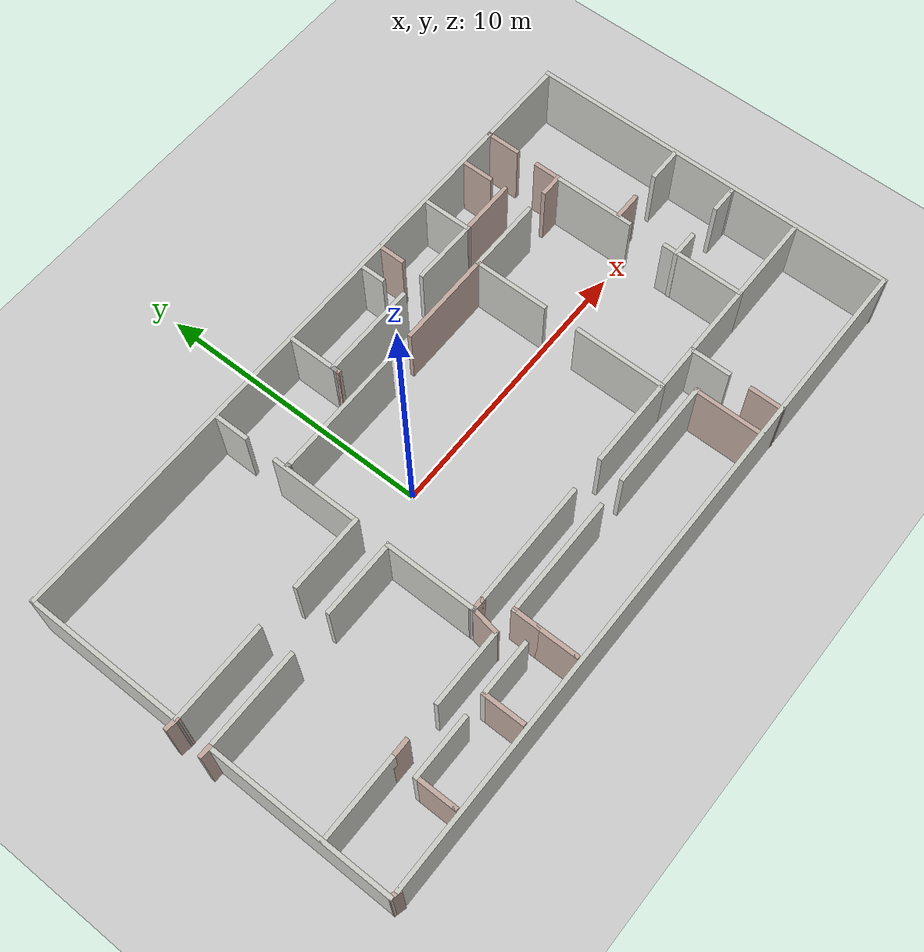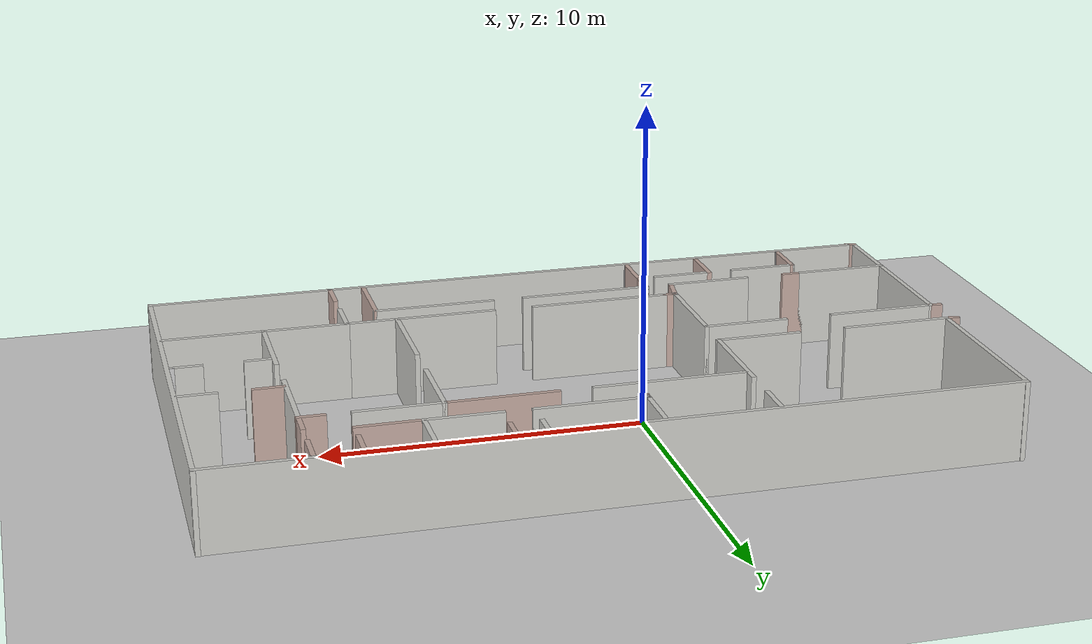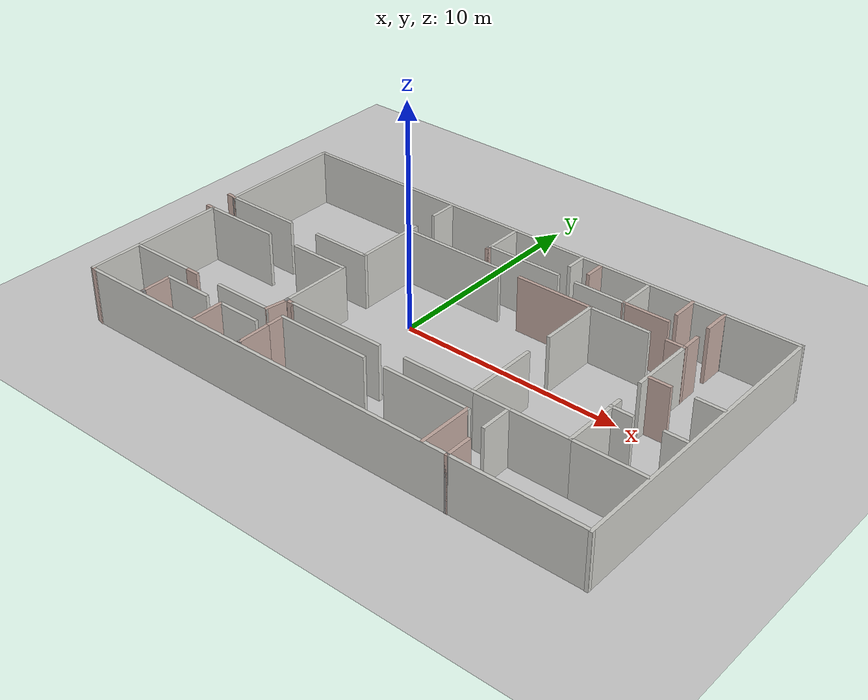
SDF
<sdf version="1.6">
 <world name="default">
  <model name="Untitled">
   <pose>1.90831 -1.04807 0 0 -0 0</pose>
   <link name="Wall_0">
    <collision name="Wall_0_Collision">
     <geometry><box><size>24 0.15 2.5</size></box></geometry>
     <pose>0 0 1.25 0 -0 0</pose>
    </collision>
    <visual name="Wall_0_Visual">
     <pose>0 0 1.25 0 -0 0</pose>
     <geometry><box><size>24 0.15 2.5</size></box></geometry>
     <material>
      <script><uri>file://media/materials/scripts/gazebo.material</uri><name>Gazebo/CeilingTiled</name></script>
      <ambient>0.760784 0.662745 0.627451 1</ambient>
     </material>
     <meta><layer>0</layer></meta>
    </visual>
    <pose>0.298836 -6.59916 0 0 -0 0</pose>
   </link>
   <link name="Wall_1">
    <collision name="Wall_1_Collision">
     <geometry><box><size>13.4119 0.15 2.5</size></box></geometry>
     <pose>0 0 1.25 0 -0 0</pose>
    </collision>
    <visual name="Wall_1_Visual">
     <pose>0 0 1.25 0 -0 0</pose>
     <geometry><box><size>13.4119 0.15 2.5</size></box></geometry>
     <material>
      <script><uri>file://media/materials/scripts/gazebo.material</uri><name>Gazebo/CeilingTiled</name></script>
      <ambient>0.760784 0.662745 0.627451 1</ambient>
     </material>
     <meta><layer>0</layer></meta>
    </visual>
    <pose>12.2238 0.008663 0 0 -0 1.5708</pose>
   </link>
   <link name="Wall_101">
    <collision name="Wall_101_Collision">
     <geometry><box><size>1 0.15 2.5</size></box></geometry>
     <pose>0 0 1.25 0 -0 0</pose>
    </collision>
    <visual name="Wall_101_Visual">
     <pose>0 0 1.25 0 -0 0</pose>
     <geometry><box><size>1 0.15 2.5</size></box></geometry>
     <material>
      <script><uri>file://media/materials/scripts/gazebo.material</uri><name>Gazebo/CeilingTiled</name></script>
      <ambient>0.760784 0.662745 0.627451 1</ambient>
     </material>
     <meta><layer>0</layer></meta>
    </visual>
    <pose>11.647 -0.916716 0 0 -0 0</pose>
   </link>
   <link name="Wall_102">
    <collision name="Wall_102_Collision">
     <geometry><box><size>0.15 0.15 2.5</size></box></geometry>
     <pose>0 0 1.25 0 -0 0</pose>
    </collision>
    <visual name="Wall_102_Visual">
     <pose>0 0 1.25 0 -0 0</pose>
     <geometry><box><size>0.15 0.15 2.5</size></box></geometry>
     <material>
      <script><uri>file://media/materials/scripts/gazebo.material</uri><name>Gazebo/LightGrey</name></script>
      <ambient>0.760784 0.662745 0.627451 1</ambient>
     </material>
     <meta><layer>0</layer></meta>
    </visual>
    <pose>12.072 -0.916716 0 0 -0 0</pose>
   </link>
   <link name="Wall_104">
    <collision name="Wall_104_Collision">
     <geometry><box><size>1 0.15 2.5</size></box></geometry>
     <pose>0 0 1.25 0 -0 0</pose>
    </collision>
    <visual name="Wall_104_Visual">
     <pose>0 0 1.25 0 -0 0</pose>
     <geometry><box><size>1 0.15 2.5</size></box></geometry>
     <material>
      <script><uri>file://media/materials/scripts/gazebo.material</uri><name>Gazebo/Grey</name></script>
      <ambient>0.760784 0.662745 0.627451 1</ambient>
     </material>
     <meta><layer>0</layer></meta>
    </visual>
    <pose>9.50731 1.37623 0 0 -0 0</pose>
   </link>
   <link name="Wall_106">
    <collision name="Wall_106_Collision">
     <geometry><box><size>1.25 0.15 2.5</size></box></geometry>
     <pose>0 0 1.25 0 -0 0</pose>
    </collision>
    <visual name="Wall_106_Visual">
     <pose>0 0 1.25 0 -0 0</pose>
     <geometry><box><size>1.25 0.15 2.5</size></box></geometry>
     <material>
      <script><uri>file://media/materials/scripts/gazebo.material</uri><name>Gazebo/CeilingTiled</name></script>
      <ambient>0.760784 0.662745 0.627451 1</ambient>
     </material>
     <meta><layer>0</layer></meta>
    </visual>
    <pose>11.5823 1.37623 0 0 -0 0</pose>
   </link>
   <link name="Wall_108">
    <collision name="Wall_108_Collision">
     <geometry><box><size>1 0.15 2.5</size></box></geometry>
     <pose>0 0 1.25 0 -0 0</pose>
    </collision>
    <visual name="Wall_108_Visual">
     <pose>0 0 1.25 0 -0 0</pose>
     <geometry><box><size>1 0.15 2.5</size></box></geometry>
     <material>
      <script><uri>file://media/materials/scripts/gazebo.material</uri><name>Gazebo/Grey</name></script>
      <ambient>0.760784 0.662745 0.627451 1</ambient>
     </material>
     <meta><layer>0</layer></meta>
    </visual>
    <pose>9.00455 4.21113 0 0 -0 1.5708</pose>
   </link>
   <link name="Wall_11">
    <collision name="Wall_11_Collision">
     <geometry><box><size>3.25 0.15 2.5</size></box></geometry>
     <pose>0 0 1.25 0 -0 0</pose>
    </collision>
    <visual name="Wall_11_Visual">
     <pose>0 0 1.25 0 -0 0</pose>
     <geometry><box><size>3.25 0.15 2.5</size></box></geometry>
     <material>
      <script><uri>file://media/materials/scripts/gazebo.material</uri><name>Gazebo/CeilingTiled</name></script>
      <ambient>0.760784 0.662745 0.627451 1</ambient>
     </material>
     <meta><layer>0</layer></meta>
    </visual>
    <pose>-4.31073 2.62935 0 0 -0 -1.5708</pose>
   </link>
   <link name="Wall_110">
    <collision name="Wall_110_Collision">
     <geometry><box><size>1.25 0.15 2.5</size></box></geometry>
     <pose>0 0 1.25 0 -0 0</pose>
    </collision>
    <visual name="Wall_110_Visual">
     <pose>0 0 1.25 0 -0 0</pose>
     <geometry><box><size>1.25 0.15 2.5</size></box></geometry>
     <material>
      <script><uri>file://media/materials/scripts/gazebo.material</uri><name>Gazebo/Grey</name></script>
      <ambient>0.760784 0.662745 0.627451 1</ambient>
     </material>
     <meta><layer>0</layer></meta>
    </visual>
    <pose>9.00455 6.03613 0 0 -0 1.5708</pose>
   </link>
   <link name="Wall_111">
    <collision name="Wall_111_Collision">
     <geometry><box><size>0.15 0.15 2.5</size></box></geometry>
     <pose>0 0 1.25 0 -0 0</pose>
    </collision>
    <visual name="Wall_111_Visual">
     <pose>0 0 1.25 0 -0 0</pose>
     <geometry><box><size>0.15 0.15 2.5</size></box></geometry>
     <material>
      <script><uri>file://media/materials/scripts/gazebo.material</uri><name>Gazebo/Grey</name></script>
      <ambient>1 1 1 1</ambient>
     </material>
     <meta><layer>0</layer></meta>
    </visual>
    <pose>9.00455 6.58613 0 0 -0 0</pose>
   </link>
   <link name="Wall_113">
    <collision name="Wall_113_Collision">
     <geometry><box><size>1 0.15 2.5</size></box></geometry>
     <pose>0 0 1.25 0 -0 0</pose>
    </collision>
    <visual name="Wall_113_Visual">
     <pose>0 0 1.25 0 -0 0</pose>
     <geometry><box><size>1 0.15 2.5</size></box></geometry>
     <material>
      <script><uri>file://media/materials/scripts/gazebo.material</uri><name>Gazebo/Grey</name></script>
      <ambient>0.760784 0.662745 0.627451 1</ambient>
     </material>
     <meta><layer>0</layer></meta>
    </visual>
    <pose>3.39016 6.16065 0 0 -0 -1.5708</pose>
   </link>
   <link name="Wall_115">
    <collision name="Wall_115_Collision">
     <geometry><box><size>2.4023 0.15 2.5</size></box></geometry>
     <pose>0 0 1.25 0 -0 0</pose>
    </collision>
    <visual name="Wall_115_Visual">
     <pose>0 0 1.25 0 -0 0</pose>
     <geometry><box><size>2.4023 0.15 2.5</size></box></geometry>
     <material>
      <script><uri>file://media/materials/scripts/gazebo.material</uri><name>Gazebo/CeilingTiled</name></script>
      <ambient>0.760784 0.662745 0.627451 1</ambient>
     </material>
     <meta><layer>0</layer></meta>
    </visual>
    <pose>4.5163 4.87991 0 0 -0 -0.005095</pose>
   </link>
   <link name="Wall_116">
    <collision name="Wall_116_Collision">
     <geometry><box><size>1.75 0.15 2.5</size></box></geometry>
     <pose>0 0 1.25 0 -0 0</pose>
    </collision>
    <visual name="Wall_116_Visual">
     <pose>0 0 1.25 0 -0 0</pose>
     <geometry><box><size>1.75 0.15 2.5</size></box></geometry>
     <material>
      <script><uri>file://media/materials/scripts/gazebo.material</uri><name>Gazebo/CeilingTiled</name></script>
      <ambient>0.760784 0.662745 0.627451 1</ambient>
     </material>
     <meta><layer>0</layer></meta>
    </visual>
    <pose>5.64243 5.67417 0 0 -0 1.5708</pose>
   </link>
   <link name="Wall_12">
    <collision name="Wall_12_Collision">
     <geometry><box><size>2.75 0.15 2.5</size></box></geometry>
     <pose>0 0 1.25 0 -0 0</pose>
    </collision>
    <visual name="Wall_12_Visual">
     <pose>0 0 1.25 0 -0 0</pose>
     <geometry><box><size>2.75 0.15 2.5</size></box></geometry>
     <material>
      <script><uri>file://media/materials/scripts/gazebo.material</uri><name>Gazebo/CeilingTiled</name></script>
      <ambient>0.760784 0.662745 0.627451 1</ambient>
     </material>
     <meta><layer>0</layer></meta>
    </visual>
    <pose>-5.61073 1.07935 0 0 -0 3.14159</pose>
   </link>
   <link name="Wall_121">
    <collision name="Wall_121_Collision">
     <geometry><box><size>2.09776 0.15 2.5</size></box></geometry>
     <pose>0 0 1.25 0 -0 0</pose>
    </collision>
    <visual name="Wall_121_Visual">
     <pose>0 0 1.25 0 -0 0</pose>
     <geometry><box><size>2.09776 0.15 2.5</size></box></geometry>
     <material>
      <script><uri>file://media/materials/scripts/gazebo.material</uri><name>Gazebo/Grey</name></script>
      <ambient>0.760784 0.662745 0.627451 1</ambient>
     </material>
     <meta><layer>0</layer></meta>
    </visual>
    <pose>6.6163 4.87991 0 0 -0 0.005892</pose>
   </link>
   <link name="Wall_123">
    <collision name="Wall_123_Collision">
     <geometry><box><size>1.25 0.15 2.5</size></box></geometry>
     <pose>0 0 1.25 0 -0 0</pose>
    </collision>
    <visual name="Wall_123_Visual">
     <pose>0 0 1.25 0 -0 0</pose>
     <geometry><box><size>1.25 0.15 2.5</size></box></geometry>
     <material>
      <script><uri>file://media/materials/scripts/gazebo.material</uri><name>Gazebo/Grey</name></script>
      <ambient>0.760784 0.662745 0.627451 1</ambient>
     </material>
     <meta><layer>0</layer></meta>
    </visual>
    <pose>7.60448 6.05576 0 0 -0 1.5708</pose>
   </link>
   <link name="Wall_14">
    <collision name="Wall_14_Collision">
     <geometry><box><size>3.5 0.15 2.5</size></box></geometry>
     <pose>0 0 1.25 0 -0 0</pose>
    </collision>
    <visual name="Wall_14_Visual">
     <pose>0 0 1.25 0 -0 0</pose>
     <geometry><box><size>3.5 0.15 2.5</size></box></geometry>
     <material>
      <script><uri>file://media/materials/scripts/gazebo.material</uri><name>Gazebo/CeilingTiled</name></script>
      <ambient>0.760784 0.662745 0.627451 1</ambient>
     </material>
     <meta><layer>0</layer></meta>
    </visual>
    <pose>-10.1857 1.07935 0 0 -0 3.14159</pose>
   </link>
   <link name="Wall_16">
    <collision name="Wall_16_Collision">
     <geometry><box><size>1.25 0.15 2.5</size></box></geometry>
     <pose>0 0 1.25 0 -0 0</pose>
    </collision>
    <visual name="Wall_16_Visual">
     <pose>0 0 1.25 0 -0 0</pose>
     <geometry><box><size>1.25 0.15 2.5</size></box></geometry>
     <material>
      <script><uri>file://media/materials/scripts/gazebo.material</uri><name>Gazebo/CeilingTiled</name></script>
      <ambient>0.760784 0.662745 0.627451 1</ambient>
     </material>
     <meta><layer>0</layer></meta>
    </visual>
    <pose>-4.31073 5.95527 0 0 -0 1.5708</pose>
   </link>
   <link name="Wall_2">
    <collision name="Wall_2_Collision">
     <geometry><box><size>24.25 0.15 2.5</size></box></geometry>
     <pose>0 0 1.25 0 -0 0</pose>
    </collision>
    <visual name="Wall_2_Visual">
     <pose>0 0 1.25 0 -0 0</pose>
     <geometry><box><size>24.25 0.15 2.5</size></box></geometry>
     <material>
      <script><uri>file://media/materials/scripts/gazebo.material</uri><name>Gazebo/CeilingTiled</name></script>
      <ambient>0.760784 0.662745 0.627451 1</ambient>
     </material>
     <meta><layer>0</layer></meta>
    </visual>
    <pose>0.173836 6.61649 0 0 -0 3.14159</pose>
   </link>
   <link name="Wall_20">
    <collision name="Wall_20_Collision">
     <geometry><box><size>3.25 0.15 2.5</size></box></geometry>
     <pose>0 0 1.25 0 -0 0</pose>
    </collision>
    <visual name="Wall_20_Visual">
     <pose>0 0 1.25 0 -0 0</pose>
     <geometry><box><size>3.25 0.15 2.5</size></box></geometry>
     <material>
      <script><uri>file://media/materials/scripts/gazebo.material</uri><name>Gazebo/CeilingTiled</name></script>
      <ambient>0.760784 0.662745 0.627451 1</ambient>
     </material>
     <meta><layer>0</layer></meta>
    </visual>
    <pose>3.28553 -3.31387 0 0 -0 3.14159</pose>
   </link>
   <link name="Wall_22">
    <collision name="Wall_22_Collision">
     <geometry><box><size>4.5 0.15 2.5</size></box></geometry>
     <pose>0 0 1.25 0 -0 0</pose>
    </collision>
    <visual name="Wall_22_Visual">
     <pose>0 0 1.25 0 -0 0</pose>
     <geometry><box><size>4.5 0.15 2.5</size></box></geometry>
     <material>
      <script><uri>file://media/materials/scripts/gazebo.material</uri><name>Gazebo/CeilingTiled</name></script>
      <ambient>0.760784 0.662745 0.627451 1</ambient>
     </material>
     <meta><layer>0</layer></meta>
    </visual>
    <pose>-1.78947 -3.31387 0 0 -0 3.14159</pose>
   </link>
   <link name="Wall_26">
    <collision name="Wall_26_Collision">
     <geometry><box><size>3.5 0.15 2.5</size></box></geometry>
     <pose>0 0 1.25 0 -0 0</pose>
    </collision>
    <visual name="Wall_26_Visual">
     <pose>0 0 1.25 0 -0 0</pose>
     <geometry><box><size>3.5 0.15 2.5</size></box></geometry>
     <material>
      <script><uri>file://media/materials/scripts/gazebo.material</uri><name>Gazebo/CeilingTiled</name></script>
      <ambient>0.760784 0.662745 0.627451 1</ambient>
     </material>
     <meta><layer>0</layer></meta>
    </visual>
    <pose>-10.2012 -0.152902 0 0 -0 0</pose>
   </link>
   <link name="Wall_28">
    <collision name="Wall_28_Collision">
     <geometry><box><size>2.75 0.15 2.5</size></box></geometry>
     <pose>0 0 1.25 0 -0 0</pose>
    </collision>
    <visual name="Wall_28_Visual">
     <pose>0 0 1.25 0 -0 0</pose>
     <geometry><box><size>2.75 0.15 2.5</size></box></geometry>
     <material>
      <script><uri>file://media/materials/scripts/gazebo.material</uri><name>Gazebo/CeilingTiled</name></script>
      <ambient>0.760784 0.662745 0.627451 1</ambient>
     </material>
     <meta><layer>0</layer></meta>
    </visual>
    <pose>-5.62616 -0.152902 0 0 -0 0</pose>
   </link>
   <link name="Wall_29">
    <collision name="Wall_29_Collision">
     <geometry><box><size>3.25 0.15 2.5</size></box></geometry>
     <pose>0 0 1.25 0 -0 0</pose>
    </collision>
    <visual name="Wall_29_Visual">
     <pose>0 0 1.25 0 -0 0</pose>
     <geometry><box><size>3.25 0.15 2.5</size></box></geometry>
     <material>
      <script><uri>file://media/materials/scripts/gazebo.material</uri><name>Gazebo/CeilingTiled</name></script>
      <ambient>0.760784 0.662745 0.627451 1</ambient>
     </material>
     <meta><layer>0</layer></meta>
    </visual>
    <pose>-4.32616 -1.7029 0 0 -0 -1.5708</pose>
   </link>
   <link name="Wall_30">
    <collision name="Wall_30_Collision">
     <geometry><box><size>0.21208 0.15 2.5</size></box></geometry>
     <pose>0 0 1.25 0 -0 0</pose>
    </collision>
    <visual name="Wall_30_Visual">
     <pose>0 0 1.25 0 -0 0</pose>
     <geometry><box><size>0.21208 0.15 2.5</size></box></geometry>
     <material>
      <script><uri>file://media/materials/scripts/gazebo.material</uri><name>Gazebo/Grey</name></script>
      <ambient>1 1 1 1</ambient>
     </material>
     <meta><layer>0</layer></meta>
    </visual>
    <pose>-4.32032 -3.28339 0 0 -0 -1.38131</pose>
   </link>
   <link name="Wall_31">
    <collision name="Wall_31_Collision">
     <geometry><box><size>0.5 0.15 2.5</size></box></geometry>
     <pose>0 0 1.25 0 -0 0</pose>
    </collision>
    <visual name="Wall_31_Visual">
     <pose>0 0 1.25 0 -0 0</pose>
     <geometry><box><size>0.5 0.15 2.5</size></box></geometry>
     <material>
      <script><uri>file://media/materials/scripts/gazebo.material</uri><name>Gazebo/Grey</name></script>
      <ambient>0.760784 0.662745 0.627451 1</ambient>
     </material>
     <meta><layer>0</layer></meta>
    </visual>
    <pose>-4.13947 -3.31387 0 0 -0 0</pose>
   </link>
   <link name="Wall_32">
    <collision name="Wall_32_Collision">
     <geometry><box><size>0.15 0.15 2.5</size></box></geometry>
     <pose>0 0 1.25 0 -0 0</pose>
    </collision>
    <visual name="Wall_32_Visual">
     <pose>0 0 1.25 0 -0 0</pose>
     <geometry><box><size>0.15 0.15 2.5</size></box></geometry>
     <material>
      <script><uri>file://media/materials/scripts/gazebo.material</uri><name>Gazebo/Grey</name></script>
      <ambient>0.760784 0.662745 0.627451 1</ambient>
     </material>
     <meta><layer>0</layer></meta>
    </visual>
    <pose>-3.96447 -3.31387 0 0 -0 0</pose>
   </link>
   <link name="Wall_34">
    <collision name="Wall_34_Collision">
     <geometry><box><size>3 0.15 2.5</size></box></geometry>
     <pose>0 0 1.25 0 -0 0</pose>
    </collision>
    <visual name="Wall_34_Visual">
     <pose>0 0 1.25 0 -0 0</pose>
     <geometry><box><size>3 0.15 2.5</size></box></geometry>
     <material>
      <script><uri>file://media/materials/scripts/gazebo.material</uri><name>Gazebo/CeilingTiled</name></script>
      <ambient>0.760784 0.662745 0.627451 1</ambient>
     </material>
     <meta><layer>0</layer></meta>
    </visual>
    <pose>-10.4466 -4.22363 0 0 -0 0</pose>
   </link>
   <link name="Wall_36">
    <collision name="Wall_36_Collision">
     <geometry><box><size>1.5 0.15 2.5</size></box></geometry>
     <pose>0 0 1.25 0 -0 0</pose>
    </collision>
    <visual name="Wall_36_Visual">
     <pose>0 0 1.25 0 -0 0</pose>
     <geometry><box><size>1.5 0.15 2.5</size></box></geometry>
     <material>
      <script><uri>file://media/materials/scripts/gazebo.material</uri><name>Gazebo/Grey</name></script>
      <ambient>0.760784 0.662745 0.627451 1</ambient>
     </material>
     <meta><layer>0</layer></meta>
    </visual>
    <pose>-9.02159 -5.74864 0 0 -0 -1.5708</pose>
   </link>
   <link name="Wall_37">
    <collision name="Wall_37_Collision">
     <geometry><box><size>0.15 0.15 2.5</size></box></geometry>
     <pose>0 0 1.25 0 -0 0</pose>
    </collision>
    <visual name="Wall_37_Visual">
     <pose>0 0 1.25 0 -0 0</pose>
     <geometry><box><size>0.15 0.15 2.5</size></box></geometry>
     <material>
      <script><uri>file://media/materials/scripts/gazebo.material</uri><name>Gazebo/Grey</name></script>
      <ambient>1 1 1 1</ambient>
     </material>
     <meta><layer>0</layer></meta>
    </visual>
    <pose>-9.02159 -6.42363 0 0 -0 0</pose>
   </link>
   <link name="Wall_39">
    <collision name="Wall_39_Collision">
     <geometry><box><size>0.75 0.15 2.5</size></box></geometry>
     <pose>0 0 1.25 0 -0 0</pose>
    </collision>
    <visual name="Wall_39_Visual">
     <pose>0 0 1.25 0 -0 0</pose>
     <geometry><box><size>0.75 0.15 2.5</size></box></geometry>
     <material>
      <script><uri>file://media/materials/scripts/gazebo.material</uri><name>Gazebo/Grey</name></script>
      <ambient>0.760784 0.662745 0.627451 1</ambient>
     </material>
     <meta><layer>0</layer></meta>
    </visual>
    <pose>-8.72159 -4.22363 0 0 -0 0</pose>
   </link>
   <link name="Wall_4">
    <collision name="Wall_4_Collision">
     <geometry><box><size>0.409452 0.15 2.5</size></box></geometry>
     <pose>0 0 1.25 0 -0 0</pose>
    </collision>
    <visual name="Wall_4_Visual">
     <pose>0 0 1.25 0 -0 0</pose>
     <geometry><box><size>0.409452 0.15 2.5</size></box></geometry>
     <material>
      <script><uri>file://media/materials/scripts/gazebo.material</uri><name>Gazebo/Grey</name></script>
      <ambient>0.760784 0.662745 0.627451 1</ambient>
     </material>
     <meta><layer>0</layer></meta>
    </visual>
    <pose>-11.7512 -6.5876 0 0 -0 -0.270751</pose>
   </link>
   <link name="Wall_41">
    <collision name="Wall_41_Collision">
     <geometry><box><size>2.75 0.15 2.5</size></box></geometry>
     <pose>0 0 1.25 0 -0 0</pose>
    </collision>
    <visual name="Wall_41_Visual">
     <pose>0 0 1.25 0 -0 0</pose>
     <geometry><box><size>2.75 0.15 2.5</size></box></geometry>
     <material>
      <script><uri>file://media/materials/scripts/gazebo.material</uri><name>Gazebo/CeilingTiled</name></script>
      <ambient>0.760784 0.662745 0.627451 1</ambient>
     </material>
     <meta><layer>0</layer></meta>
    </visual>
    <pose>-5.77159 -4.22363 0 0 -0 0</pose>
   </link>
   <link name="Wall_42">
    <collision name="Wall_42_Collision">
     <geometry><box><size>1.07323 0.15 2.5</size></box></geometry>
     <pose>0 0 1.25 0 -0 0</pose>
    </collision>
    <visual name="Wall_42_Visual">
     <pose>0 0 1.25 0 -0 0</pose>
     <geometry><box><size>1.07323 0.15 2.5</size></box></geometry>
     <material>
      <script><uri>file://media/materials/scripts/gazebo.material</uri><name>Gazebo/Grey</name></script>
      <ambient>0.760784 0.662745 0.627451 1</ambient>
     </material>
     <meta><layer>0</layer></meta>
    </visual>
    <pose>-4.39303 -3.76875 0 0 -0 1.39978</pose>
   </link>
   <link name="Wall_43">
    <collision name="Wall_43_Collision">
     <geometry><box><size>0.15 0.15 2.5</size></box></geometry>
     <pose>0 0 1.25 0 -0 0</pose>
    </collision>
    <visual name="Wall_43_Visual">
     <pose>0 0 1.25 0 -0 0</pose>
     <geometry><box><size>0.15 0.15 2.5</size></box></geometry>
     <material>
      <script><uri>file://media/materials/scripts/gazebo.material</uri><name>Gazebo/Grey</name></script>
      <ambient>1 1 1 1</ambient>
     </material>
     <meta><layer>0</layer></meta>
    </visual>
    <pose>-4.31447 -3.31387 0 0 -0 0</pose>
   </link>
   <link name="Wall_45">
    <collision name="Wall_45_Collision">
     <geometry><box><size>2.25 0.15 2.5</size></box></geometry>
     <pose>0 0 1.25 0 -0 0</pose>
    </collision>
    <visual name="Wall_45_Visual">
     <pose>0 0 1.25 0 -0 0</pose>
     <geometry><box><size>2.25 0.15 2.5</size></box></geometry>
     <material>
      <script><uri>file://media/materials/scripts/gazebo.material</uri><name>Gazebo/CeilingTiled</name></script>
      <ambient>0.760784 0.662745 0.627451 1</ambient>
     </material>
     <meta><layer>0</layer></meta>
    </visual>
    <pose>-7.97159 -5.07364 0 0 -0 0</pose>
   </link>
   <link name="Wall_47">
    <collision name="Wall_47_Collision">
     <geometry><box><size>1.5 0.15 2.5</size></box></geometry>
     <pose>0 0 1.25 0 -0 0</pose>
    </collision>
    <visual name="Wall_47_Visual">
     <pose>0 0 1.25 0 -0 0</pose>
     <geometry><box><size>1.5 0.15 2.5</size></box></geometry>
     <material>
      <script><uri>file://media/materials/scripts/gazebo.material</uri><name>Gazebo/Grey</name></script>
      <ambient>0.760784 0.662745 0.627451 1</ambient>
     </material>
     <meta><layer>0</layer></meta>
    </visual>
    <pose>-6.07159 -5.74864 0 0 -0 -1.5708</pose>
   </link>
   <link name="Wall_49">
    <collision name="Wall_49_Collision">
     <geometry><box><size>2 0.15 2.5</size></box></geometry>
     <pose>0 0 1.25 0 -0 0</pose>
    </collision>
    <visual name="Wall_49_Visual">
     <pose>0 0 1.25 0 -0 0</pose>
     <geometry><box><size>2 0.15 2.5</size></box></geometry>
     <material>
      <script><uri>file://media/materials/scripts/gazebo.material</uri><name>Gazebo/CeilingTiled</name></script>
      <ambient>0.760784 0.662745 0.627451 1</ambient>
     </material>
     <meta><layer>0</layer></meta>
    </visual>
    <pose>-5.14659 -5.07364 0 0 -0 0</pose>
   </link>
   <link name="Wall_51">
    <collision name="Wall_51_Collision">
     <geometry><box><size>1.5 0.15 2.5</size></box></geometry>
     <pose>0 0 1.25 0 -0 0</pose>
    </collision>
    <visual name="Wall_51_Visual">
     <pose>0 0 1.25 0 -0 0</pose>
     <geometry><box><size>1.5 0.15 2.5</size></box></geometry>
     <material>
      <script><uri>file://media/materials/scripts/gazebo.material</uri><name>Gazebo/Grey</name></script>
      <ambient>0.760784 0.662745 0.627451 1</ambient>
     </material>
     <meta><layer>0</layer></meta>
    </visual>
    <pose>-3.62159 -5.74864 0 0 -0 -1.5708</pose>
   </link>
   <link name="Wall_52">
    <collision name="Wall_52_Collision">
     <geometry><box><size>0.15 0.15 2.5</size></box></geometry>
     <pose>0 0 1.25 0 -0 0</pose>
    </collision>
    <visual name="Wall_52_Visual">
     <pose>0 0 1.25 0 -0 0</pose>
     <geometry><box><size>0.15 0.15 2.5</size></box></geometry>
     <material>
      <script><uri>file://media/materials/scripts/gazebo.material</uri><name>Gazebo/Grey</name></script>
      <ambient>1 1 1 1</ambient>
     </material>
     <meta><layer>0</layer></meta>
    </visual>
    <pose>-3.62159 -6.42363 0 0 -0 0</pose>
   </link>
   <link name="Wall_54">
    <collision name="Wall_54_Collision">
     <geometry><box><size>1 0.15 2.5</size></box></geometry>
     <pose>0 0 1.25 0 -0 0</pose>
    </collision>
    <visual name="Wall_54_Visual">
     <pose>0 0 1.25 0 -0 0</pose>
     <geometry><box><size>1 0.15 2.5</size></box></geometry>
     <material>
      <script><uri>file://media/materials/scripts/gazebo.material</uri><name>Gazebo/Grey</name></script>
      <ambient>0.760784 0.662745 0.627451 1</ambient>
     </material>
     <meta><layer>0</layer></meta>
    </visual>
    <pose>-3.62159 -4.64863 0 0 -0 1.5708</pose>
   </link>
   <link name="Wall_55">
    <collision name="Wall_55_Collision">
     <geometry><box><size>4.25 0.15 2.5</size></box></geometry>
     <pose>0 0 1.25 0 -0 0</pose>
    </collision>
    <visual name="Wall_55_Visual">
     <pose>0 0 1.25 0 -0 0</pose>
     <geometry><box><size>4.25 0.15 2.5</size></box></geometry>
     <material>
      <script><uri>file://media/materials/scripts/gazebo.material</uri><name>Gazebo/CeilingTiled</name></script>
      <ambient>0.760784 0.662745 0.627451 1</ambient>
     </material>
     <meta><layer>0</layer></meta>
    </visual>
    <pose>-1.57159 -4.22363 0 0 -0 0</pose>
   </link>
   <link name="Wall_57">
    <collision name="Wall_57_Collision">
     <geometry><box><size>3.93948 0.15 2.5</size></box></geometry>
     <pose>0 0 1.25 0 -0 0</pose>
    </collision>
    <visual name="Wall_57_Visual">
     <pose>0 0 1.25 0 -0 0</pose>
     <geometry><box><size>3.93948 0.15 2.5</size></box></geometry>
     <material>
      <script><uri>file://media/materials/scripts/gazebo.material</uri><name>Gazebo/CeilingTiled</name></script>
      <ambient>0.760784 0.662745 0.627451 1</ambient>
     </material>
     <meta><layer>0</layer></meta>
    </visual>
    <pose>3.47316 -4.22363 0 0 -0 0</pose>
   </link>
   <link name="Wall_58">
    <collision name="Wall_58_Collision">
     <geometry><box><size>2.5 0.15 2.5</size></box></geometry>
     <pose>0 0 1.25 0 -0 0</pose>
    </collision>
    <visual name="Wall_58_Visual">
     <pose>0 0 1.25 0 -0 0</pose>
     <geometry><box><size>2.5 0.15 2.5</size></box></geometry>
     <material>
      <script><uri>file://media/materials/scripts/gazebo.material</uri><name>Gazebo/Grey</name></script>
      <ambient>0.760784 0.662745 0.627451 1</ambient>
     </material>
     <meta><layer>0</layer></meta>
    </visual>
    <pose>5.34476 -5.39863 0 0 -0 -1.5708</pose>
   </link>
   <link name="Wall_60">
    <collision name="Wall_60_Collision">
     <geometry><box><size>3.5 0.15 2.5</size></box></geometry>
     <pose>0 0 1.25 0 -0 0</pose>
    </collision>
    <visual name="Wall_60_Visual">
     <pose>0 0 1.25 0 -0 0</pose>
     <geometry><box><size>3.5 0.15 2.5</size></box></geometry>
     <material>
      <script><uri>file://media/materials/scripts/gazebo.material</uri><name>Gazebo/Grey</name></script>
      <ambient>0.760784 0.662745 0.627451 1</ambient>
     </material>
     <meta><layer>0</layer></meta>
    </visual>
    <pose>3.16053 3.78613 0 0 -0 3.14159</pose>
   </link>
   <link name="Wall_62">
    <collision name="Wall_62_Collision">
     <geometry><box><size>4.75 0.15 2.5</size></box></geometry>
     <pose>0 0 1.25 0 -0 0</pose>
    </collision>
    <visual name="Wall_62_Visual">
     <pose>0 0 1.25 0 -0 0</pose>
     <geometry><box><size>4.75 0.15 2.5</size></box></geometry>
     <material>
      <script><uri>file://media/materials/scripts/gazebo.material</uri><name>Gazebo/CeilingTiled</name></script>
      <ambient>0.760784 0.662745 0.627451 1</ambient>
     </material>
     <meta><layer>0</layer></meta>
    </visual>
    <pose>-1.91447 3.78613 0 0 -0 3.14159</pose>
   </link>
   <link name="Wall_63">
    <collision name="Wall_63_Collision">
     <geometry><box><size>0.15 0.15 2.5</size></box></geometry>
     <pose>0 0 1.25 0 -0 0</pose>
    </collision>
    <visual name="Wall_63_Visual">
     <pose>0 0 1.25 0 -0 0</pose>
     <geometry><box><size>0.15 0.15 2.5</size></box></geometry>
     <material>
      <script><uri>file://media/materials/scripts/gazebo.material</uri><name>Gazebo/Grey</name></script>
      <ambient>1 1 1 1</ambient>
     </material>
     <meta><layer>0</layer></meta>
    </visual>
    <pose>-4.21447 3.78613 0 0 -0 0</pose>
   </link>
   <link name="Wall_65">
    <collision name="Wall_65_Collision">
     <geometry><box><size>0.508533 0.15 2.5</size></box></geometry>
     <pose>0 0 1.25 0 -0 0</pose>
    </collision>
    <visual name="Wall_65_Visual">
     <pose>0 0 1.25 0 -0 0</pose>
     <geometry><box><size>0.508533 0.15 2.5</size></box></geometry>
     <material>
      <script><uri>file://media/materials/scripts/gazebo.material</uri><name>Gazebo/Grey</name></script>
      <ambient>0.760784 0.662745 0.627451 1</ambient>
     </material>
     <meta><layer>0</layer></meta>
    </visual>
    <pose>-12.0394 1.09353 0 0 -0 -0.079165</pose>
   </link>
   <link name="Wall_66">
    <collision name="Wall_66_Collision">
     <geometry><box><size>0.15 0.15 2.5</size></box></geometry>
     <pose>0 0 1.25 0 -0 0</pose>
    </collision>
    <visual name="Wall_66_Visual">
     <pose>0 0 1.25 0 -0 0</pose>
     <geometry><box><size>0.15 0.15 2.5</size></box></geometry>
     <material>
      <script><uri>file://media/materials/scripts/gazebo.material</uri><name>Gazebo/Grey</name></script>
      <ambient>1 1 1 1</ambient>
     </material>
     <meta><layer>0</layer></meta>
    </visual>
    <pose>-11.8607 1.07935 0 0 -0 0</pose>
   </link>
   <link name="Wall_68">
    <collision name="Wall_68_Collision">
     <geometry><box><size>0.465549 0.15 2.5</size></box></geometry>
     <pose>0 0 1.25 0 -0 0</pose>
    </collision>
    <visual name="Wall_68_Visual">
     <pose>0 0 1.25 0 -0 0</pose>
     <geometry><box><size>0.465549 0.15 2.5</size></box></geometry>
     <material>
      <script><uri>file://media/materials/scripts/gazebo.material</uri><name>Gazebo/Grey</name></script>
      <ambient>0.760784 0.662745 0.627451 1</ambient>
     </material>
     <meta><layer>0</layer></meta>
    </visual>
    <pose>-12.0339 -0.147704 0 0 -0 -0.03295</pose>
   </link>
   <link name="Wall_7">
    <collision name="Wall_7_Collision">
     <geometry><box><size>5.59252 0.15 2.5</size></box></geometry>
     <pose>0 0 1.25 0 -0 0</pose>
    </collision>
    <visual name="Wall_7_Visual">
     <pose>0 0 1.25 0 -0 0</pose>
     <geometry><box><size>5.59252 0.15 2.5</size></box></geometry>
     <material>
      <script><uri>file://media/materials/scripts/gazebo.material</uri><name>Gazebo/CeilingTiled</name></script>
      <ambient>0.760784 0.662745 0.627451 1</ambient>
     </material>
     <meta><layer>0</layer></meta>
    </visual>
    <pose>-11.8762 3.91836 0 0 -0 -1.5708</pose>
   </link>
   <link name="Wall_70">
    <collision name="Wall_70_Collision">
     <geometry><box><size>1.75 0.15 2.5</size></box></geometry>
     <pose>0 0 1.25 0 -0 0</pose>
    </collision>
    <visual name="Wall_70_Visual">
     <pose>0 0 1.25 0 -0 0</pose>
     <geometry><box><size>1.75 0.15 2.5</size></box></geometry>
     <material>
      <script><uri>file://media/materials/scripts/gazebo.material</uri><name>Gazebo/CeilingTiled</name></script>
      <ambient>0.760784 0.662745 0.627451 1</ambient>
     </material>
     <meta><layer>0</layer></meta>
    </visual>
    <pose>-0.886456 5.70754 0 0 -0 -1.5708</pose>
   </link>
   <link name="Wall_71">
    <collision name="Wall_71_Collision">
     <geometry><box><size>0.15 0.15 2.5</size></box></geometry>
     <pose>0 0 1.25 0 -0 0</pose>
    </collision>
    <visual name="Wall_71_Visual">
     <pose>0 0 1.25 0 -0 0</pose>
     <geometry><box><size>0.15 0.15 2.5</size></box></geometry>
     <material>
      <script><uri>file://media/materials/scripts/gazebo.material</uri><name>Gazebo/Grey</name></script>
      <ambient>1 1 1 1</ambient>
     </material>
     <meta><layer>0</layer></meta>
    </visual>
    <pose>-0.886456 4.90754 0 0 -0 0</pose>
   </link>
   <link name="Wall_72">
    <collision name="Wall_72_Collision">
     <geometry><box><size>3.5 0.15 2.5</size></box></geometry>
     <pose>0 0 1.25 0 -0 0</pose>
    </collision>
    <visual name="Wall_72_Visual">
     <pose>0 0 1.25 0 -0 0</pose>
     <geometry><box><size>3.5 0.15 2.5</size></box></geometry>
     <material>
      <script><uri>file://media/materials/scripts/gazebo.material</uri><name>Gazebo/CeilingTiled</name></script>
      <ambient>0.760784 0.662745 0.627451 1</ambient>
     </material>
     <meta><layer>0</layer></meta>
    </visual>
    <pose>0.788544 4.90754 0 0 -0 0</pose>
   </link>
   <link name="Wall_74">
    <collision name="Wall_74_Collision">
     <geometry><box><size>1 0.15 2.5</size></box></geometry>
     <pose>0 0 1.25 0 -0 0</pose>
    </collision>
    <visual name="Wall_74_Visual">
     <pose>0 0 1.25 0 -0 0</pose>
     <geometry><box><size>1 0.15 2.5</size></box></geometry>
     <material>
      <script><uri>file://media/materials/scripts/gazebo.material</uri><name>Gazebo/CeilingTiled</name></script>
      <ambient>0.760784 0.662745 0.627451 1</ambient>
     </material>
     <meta><layer>0</layer></meta>
    </visual>
    <pose>2.46354 6.18254 0 0 -0 1.5708</pose>
   </link>
   <link name="Wall_76">
    <collision name="Wall_76_Collision">
     <geometry><box><size>0.25 0.15 2.5</size></box></geometry>
     <pose>0 0 1.25 0 -0 0</pose>
    </collision>
    <visual name="Wall_76_Visual">
     <pose>0 0 1.25 0 -0 0</pose>
     <geometry><box><size>0.25 0.15 2.5</size></box></geometry>
     <material>
      <script><uri>file://media/materials/scripts/gazebo.material</uri><name>Gazebo/Grey</name></script>
      <ambient>1 1 1 1</ambient>
     </material>
     <meta><layer>0</layer></meta>
    </visual>
    <pose>-0.886456 4.85754 0 0 -0 -1.5708</pose>
   </link>
   <link name="Wall_77">
    <collision name="Wall_77_Collision">
     <geometry><box><size>0.25 0.15 2.5</size></box></geometry>
     <pose>0 0 1.25 0 -0 0</pose>
    </collision>
    <visual name="Wall_77_Visual">
     <pose>0 0 1.25 0 -0 0</pose>
     <geometry><box><size>0.25 0.15 2.5</size></box></geometry>
     <material>
      <script><uri>file://media/materials/scripts/gazebo.material</uri><name>Gazebo/Grey</name></script>
      <ambient>0.760784 0.662745 0.627451 1</ambient>
     </material>
     <meta><layer>0</layer></meta>
    </visual>
    <pose>-0.886456 4.75754 0 0 -0 -1.5708</pose>
   </link>
   <link name="Wall_78">
    <collision name="Wall_78_Collision">
     <geometry><box><size>0.25 0.15 2.5</size></box></geometry>
     <pose>0 0 1.25 0 -0 0</pose>
    </collision>
    <visual name="Wall_78_Visual">
     <pose>0 0 1.25 0 -0 0</pose>
     <geometry><box><size>0.25 0.15 2.5</size></box></geometry>
     <material>
      <script><uri>file://media/materials/scripts/gazebo.material</uri><name>Gazebo/Grey</name></script>
      <ambient>0.760784 0.662745 0.627451 1</ambient>
     </material>
     <meta><layer>0</layer></meta>
    </visual>
    <pose>-0.886456 4.75754 0 0 -0 1.5708</pose>
   </link>
   <link name="Wall_80">
    <collision name="Wall_80_Collision">
     <geometry><box><size>2.75 0.15 2.5</size></box></geometry>
     <pose>0 0 1.25 0 -0 0</pose>
    </collision>
    <visual name="Wall_80_Visual">
     <pose>0 0 1.25 0 -0 0</pose>
     <geometry><box><size>2.75 0.15 2.5</size></box></geometry>
     <material>
      <script><uri>file://media/materials/scripts/gazebo.material</uri><name>Gazebo/CeilingTiled</name></script>
      <ambient>0.760784 0.662745 0.627451 1</ambient>
     </material>
     <meta><layer>0</layer></meta>
    </visual>
    <pose>4.83553 2.48613 0 0 -0 -1.5708</pose>
   </link>
   <link name="Wall_82">
    <collision name="Wall_82_Collision">
     <geometry><box><size>3.3 0.15 2.5</size></box></geometry>
     <pose>0 0 1.25 0 -0 0</pose>
    </collision>
    <visual name="Wall_82_Visual">
     <pose>0 0 1.25 0 -0 0</pose>
     <geometry><box><size>3.3 0.15 2.5</size></box></geometry>
     <material>
      <script><uri>file://media/materials/scripts/gazebo.material</uri><name>Gazebo/CeilingTiled</name></script>
      <ambient>0.760784 0.662745 0.627451 1</ambient>
     </material>
     <meta><layer>0</layer></meta>
    </visual>
    <pose>4.83553 -1.73887 0 0 -0 -1.5708</pose>
   </link>
   <link name="Wall_83">
    <collision name="Wall_83_Collision">
     <geometry><box><size>1.75 0.15 2.5</size></box></geometry>
     <pose>0 0 1.25 0 -0 0</pose>
    </collision>
    <visual name="Wall_83_Visual">
     <pose>0 0 1.25 0 -0 0</pose>
     <geometry><box><size>1.75 0.15 2.5</size></box></geometry>
     <material>
      <script><uri>file://media/materials/scripts/gazebo.material</uri><name>Gazebo/CeilingTiled</name></script>
      <ambient>0.760784 0.662745 0.627451 1</ambient>
     </material>
     <meta><layer>0</layer></meta>
    </visual>
    <pose>5.63553 -3.31387 0 0 -0 0</pose>
   </link>
   <link name="Wall_84">
    <collision name="Wall_84_Collision">
     <geometry><box><size>1.5 0.15 2.5</size></box></geometry>
     <pose>0 0 1.25 0 -0 0</pose>
    </collision>
    <visual name="Wall_84_Visual">
     <pose>0 0 1.25 0 -0 0</pose>
     <geometry><box><size>1.5 0.15 2.5</size></box></geometry>
     <material>
      <script><uri>file://media/materials/scripts/gazebo.material</uri><name>Gazebo/CeilingTiled</name></script>
      <ambient>0.760784 0.662745 0.627451 1</ambient>
     </material>
     <meta><layer>0</layer></meta>
    </visual>
    <pose>6.43553 -3.98887 0 0 -0 -1.5708</pose>
   </link>
   <link name="Wall_86">
    <collision name="Wall_86_Collision">
     <geometry><box><size>1.25 0.15 2.5</size></box></geometry>
     <pose>0 0 1.25 0 -0 0</pose>
    </collision>
    <visual name="Wall_86_Visual">
     <pose>0 0 1.25 0 -0 0</pose>
     <geometry><box><size>1.25 0.15 2.5</size></box></geometry>
     <material>
      <script><uri>file://media/materials/scripts/gazebo.material</uri><name>Gazebo/Grey</name></script>
      <ambient>0.760784 0.662745 0.627451 1</ambient>
     </material>
     <meta><layer>0</layer></meta>
    </visual>
    <pose>6.43553 -6.06387 0 0 -0 -1.5708</pose>
   </link>
   <link name="Wall_87">
    <collision name="Wall_87_Collision">
     <geometry><box><size>0.15 0.15 2.5</size></box></geometry>
     <pose>0 0 1.25 0 -0 0</pose>
    </collision>
    <visual name="Wall_87_Visual">
     <pose>0 0 1.25 0 -0 0</pose>
     <geometry><box><size>0.15 0.15 2.5</size></box></geometry>
     <material>
      <script><uri>file://media/materials/scripts/gazebo.material</uri><name>Gazebo/Grey</name></script>
      <ambient>1 1 1 1</ambient>
     </material>
     <meta><layer>0</layer></meta>
    </visual>
    <pose>6.43553 -6.61387 0 0 -0 0</pose>
   </link>
   <link name="Wall_89">
    <collision name="Wall_89_Collision">
     <geometry><box><size>2.75 0.15 2.5</size></box></geometry>
     <pose>0 0 1.25 0 -0 0</pose>
    </collision>
    <visual name="Wall_89_Visual">
     <pose>0 0 1.25 0 -0 0</pose>
     <geometry><box><size>2.75 0.15 2.5</size></box></geometry>
     <material>
      <script><uri>file://media/materials/scripts/gazebo.material</uri><name>Gazebo/CeilingTiled</name></script>
      <ambient>0.760784 0.662745 0.627451 1</ambient>
     </material>
     <meta><layer>0</layer></meta>
    </visual>
    <pose>6.13553 3.78613 0 0 -0 0</pose>
   </link>
   <link name="Wall_9">
    <collision name="Wall_9_Collision">
     <geometry><box><size>6.55 0.15 2.5</size></box></geometry>
     <pose>0 0 1.25 0 -0 0</pose>
    </collision>
    <visual name="Wall_9_Visual">
     <pose>0 0 1.25 0 -0 0</pose>
     <geometry><box><size>6.55 0.15 2.5</size></box></geometry>
     <material>
      <script><uri>file://media/materials/scripts/gazebo.material</uri><name>Gazebo/CeilingTiled</name></script>
      <ambient>0.760784 0.662745 0.627451 1</ambient>
     </material>
     <meta><layer>0</layer></meta>
    </visual>
    <pose>-11.8762 -3.3529 0 0 -0 -1.5708</pose>
   </link>
   <link name="Wall_91">
    <collision name="Wall_91_Collision">
     <geometry><box><size>0.88225 0.15 2.5</size></box></geometry>
     <pose>0 0 1.25 0 -0 0</pose>
    </collision>
    <visual name="Wall_91_Visual">
     <pose>0 0 1.25 0 -0 0</pose>
     <geometry><box><size>0.88225 0.15 2.5</size></box></geometry>
     <material>
      <script><uri>file://media/materials/scripts/gazebo.material</uri><name>Gazebo/Grey</name></script>
      <ambient>0.760784 0.662745 0.627451 1</ambient>
     </material>
     <meta><layer>0</layer></meta>
    </visual>
    <pose>8.65165 3.78613 0 0 -0 0</pose>
   </link>
   <link name="Wall_92">
    <collision name="Wall_92_Collision">
     <geometry><box><size>3 0.15 2.5</size></box></geometry>
     <pose>0 0 1.25 0 -0 0</pose>
    </collision>
    <visual name="Wall_92_Visual">
     <pose>0 0 1.25 0 -0 0</pose>
     <geometry><box><size>3 0.15 2.5</size></box></geometry>
     <material>
      <script><uri>file://media/materials/scripts/gazebo.material</uri><name>Gazebo/CeilingTiled</name></script>
      <ambient>0.760784 0.662745 0.627451 1</ambient>
     </material>
     <meta><layer>0</layer></meta>
    </visual>
    <pose>9.00455 2.36113 0 0 -0 -1.5708</pose>
   </link>
   <link name="Wall_94">
    <collision name="Wall_94_Collision">
     <geometry><box><size>3 0.15 2.5</size></box></geometry>
     <pose>0 0 1.25 0 -0 0</pose>
    </collision>
    <visual name="Wall_94_Visual">
     <pose>0 0 1.25 0 -0 0</pose>
     <geometry><box><size>3 0.15 2.5</size></box></geometry>
     <material>
      <script><uri>file://media/materials/scripts/gazebo.material</uri><name>Gazebo/CeilingTiled</name></script>
      <ambient>0.760784 0.662745 0.627451 1</ambient>
     </material>
     <meta><layer>0</layer></meta>
    </visual>
    <pose>9.03553 -1.88887 0 0 -0 -1.5708</pose>
   </link>
   <link name="Wall_95">
    <collision name="Wall_95_Collision">
     <geometry><box><size>2.75 0.15 2.5</size></box></geometry>
     <pose>0 0 1.25 0 -0 0</pose>
    </collision>
    <visual name="Wall_95_Visual">
     <pose>0 0 1.25 0 -0 0</pose>
     <geometry><box><size>2.75 0.15 2.5</size></box></geometry>
     <material>
      <script><uri>file://media/materials/scripts/gazebo.material</uri><name>Gazebo/CeilingTiled</name></script>
      <ambient>0.760784 0.662745 0.627451 1</ambient>
     </material>
     <meta><layer>0</layer></meta>
    </visual>
    <pose>7.73553 -3.31387 0 0 -0 3.14159</pose>
   </link>
   <link name="Wall_97">
    <collision name="Wall_97_Collision">
     <geometry><box><size>3.25 0.15 2.5</size></box></geometry>
     <pose>0 0 1.25 0 -0 0</pose>
    </collision>
    <visual name="Wall_97_Visual">
     <pose>0 0 1.25 0 -0 0</pose>
     <geometry><box><size>3.25 0.15 2.5</size></box></geometry>
     <material>
      <script><uri>file://media/materials/scripts/gazebo.material</uri><name>Gazebo/CeilingTiled</name></script>
      <ambient>0.760784 0.662745 0.627451 1</ambient>
     </material>
     <meta><layer>0</layer></meta>
    </visual>
    <pose>10.5855 -3.31387 0 0 -0 0</pose>
   </link>
   <link name="Wall_99">
    <collision name="Wall_99_Collision">
     <geometry><box><size>1 0.15 2.5</size></box></geometry>
     <pose>0 0 1.25 0 -0 0</pose>
    </collision>
    <visual name="Wall_99_Visual">
     <pose>0 0 1.25 0 -0 0</pose>
     <geometry><box><size>1 0.15 2.5</size></box></geometry>
     <material>
      <script><uri>file://media/materials/scripts/gazebo.material</uri><name>Gazebo/CeilingTiled</name></script>
      <ambient>0.760784 0.662745 0.627451 1</ambient>
     </material>
     <meta><layer>0</layer></meta>
    </visual>
    <pose>9.44696 -0.916716 0 0 -0 0</pose>
   </link>
   <static>1</static>
  </model>
  <model name="ground_plane">
   <static>1</static>
   <link name="link">
    <collision name="collision">
     <geometry><plane><normal>0 0 1</normal><size>100 100</size></plane></geometry>
     <surface><friction><ode><mu>100</mu><mu2>50</mu2></ode></friction></surface>
    </collision>
    <visual name="visual">
     <cast_shadows>0</cast_shadows>
     <geometry><plane><normal>0 0 1</normal><size>100 100</size></plane></geometry>
     <material>
      <script><uri>file://media/materials/scripts/gazebo.material</uri><name>Gazebo/Grey</name></script>
     </material>
    </visual>
   </link>
   <pose>1.79627 -1.63715 0 0 -0 0</pose>
  </model>
 </world>
</sdf>
